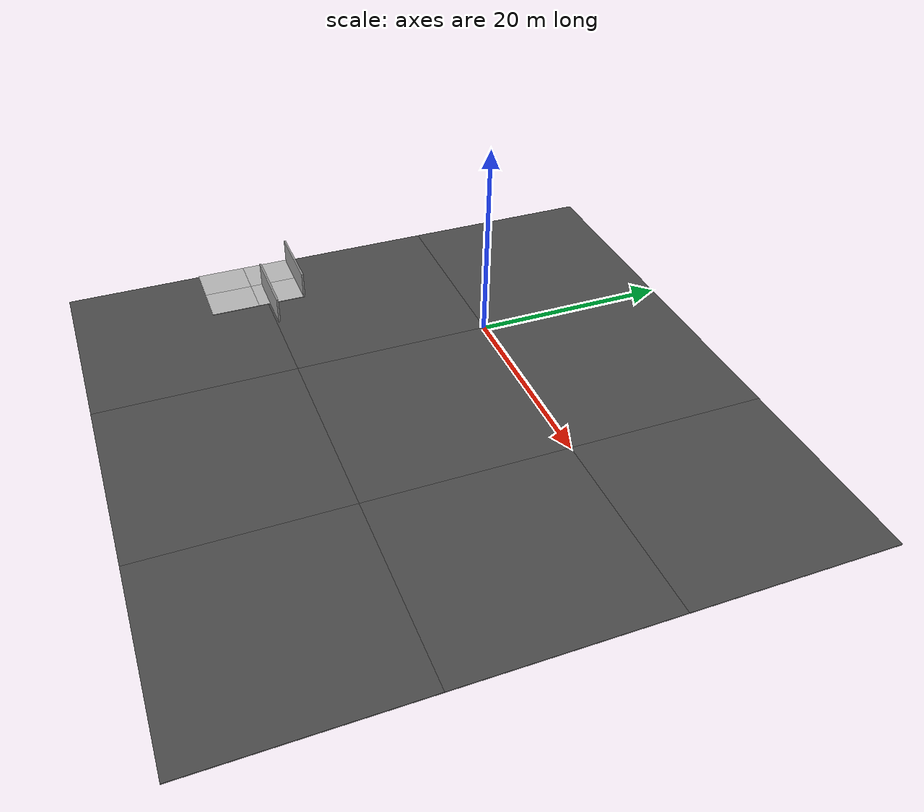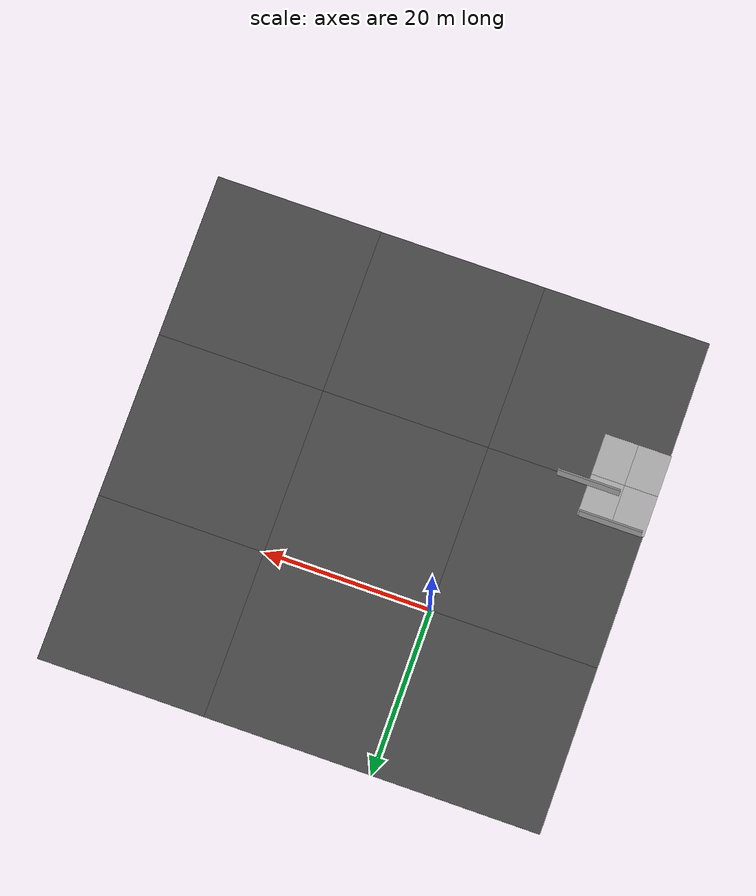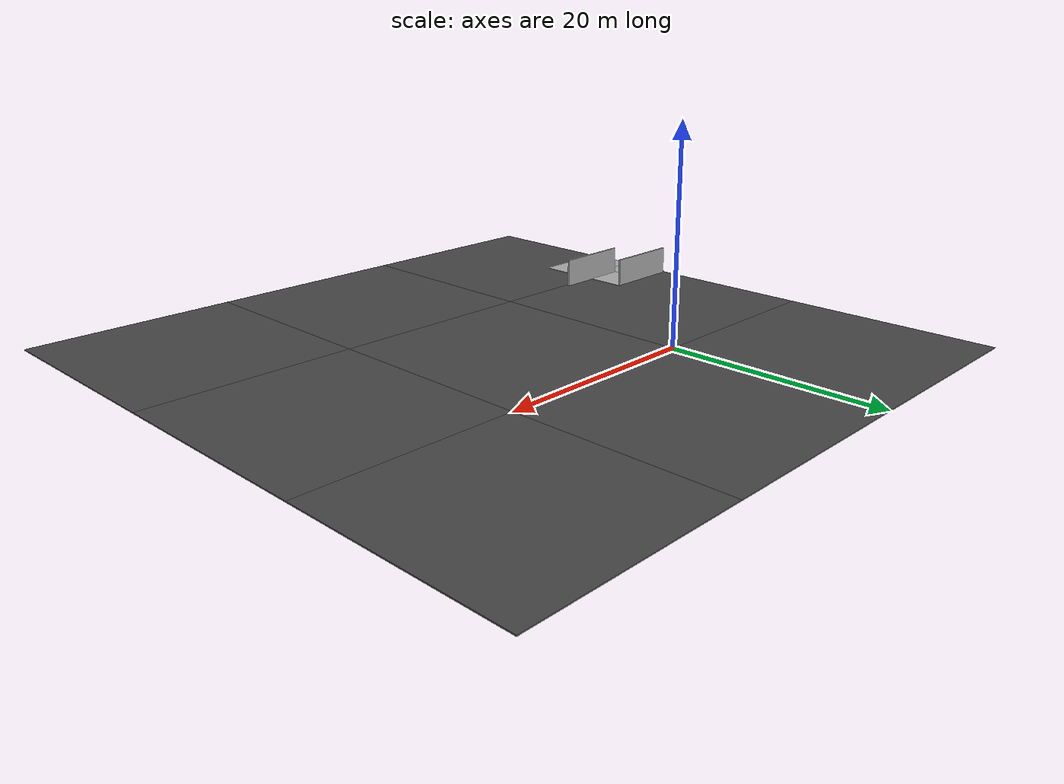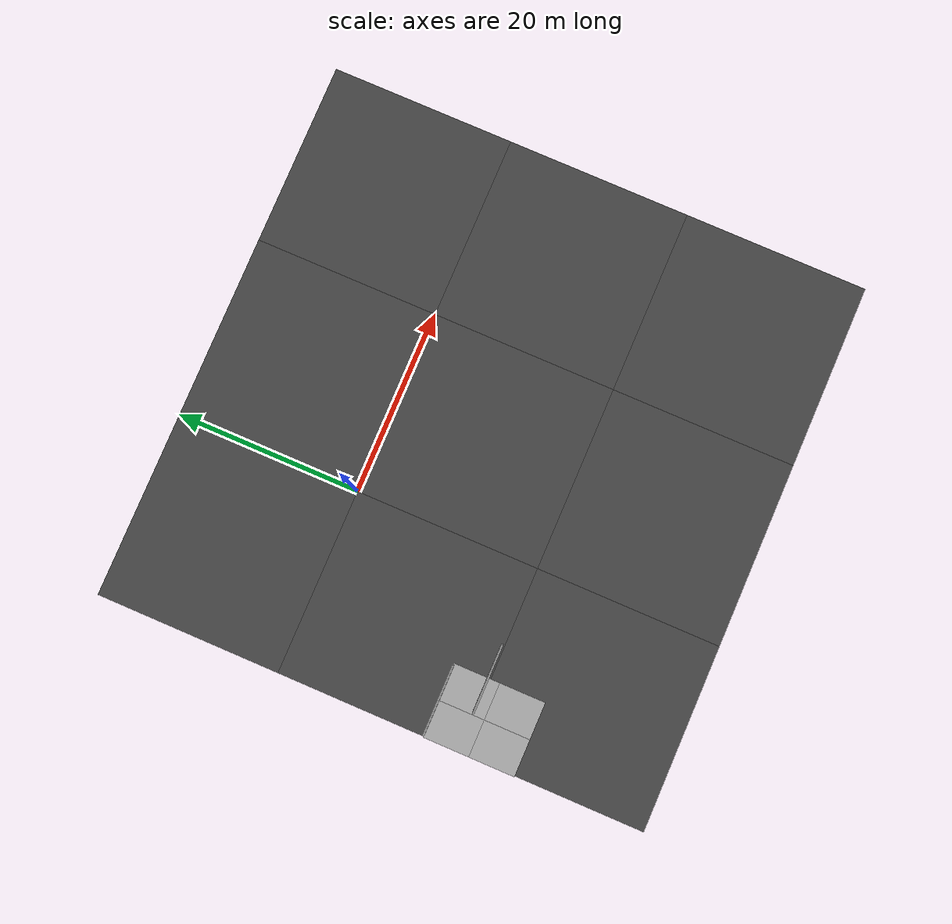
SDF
<sdf version="1.6">
 <world name="default">
  <plugin name="gazebo_octomap" filename="librotors_gazebo_octomap_plugin.so">
   <octomapPubTopic>world/octomap</octomapPubTopic>
   <octomapServiceName>world/get_octomap</octomapServiceName>
  </plugin>
  <light name="sun" type="directional">
   <pose>0 0 10 0 -0 0</pose>
   <diffuse>0.8 0.8 0.8 1</diffuse>
   <specular>0.2 0.2 0.2 1</specular>
   <attenuation>
    <range>1000</range>
    <constant>0.9</constant>
    <linear>0.01</linear>
    <quadratic>0.001</quadratic>
   </attenuation>
   <direction>-0.5 0.1 -0.9</direction>
  </light>
  <plugin name="ros_interface_plugin" filename="librotors_gazebo_ros_interface_plugin.so"/>
  <physics name="default_physics" default="0" type="ode">
   <ode>
    <solver>
     <type>quick</type>
     <iters>1000</iters>
     <sor>1.3</sor>
     <use_dynamic_moi_rescaling>0</use_dynamic_moi_rescaling>
    </solver>
    <constraints>
     <cfm>0</cfm>
     <erp>0.2</erp>
     <contact_max_correcting_vel>100</contact_max_correcting_vel>
     <contact_surface_layer>0.001</contact_surface_layer>
    </constraints>
   </ode>
   <max_step_size>0.01</max_step_size>
   <real_time_factor>1</real_time_factor>
   <real_time_update_rate>100</real_time_update_rate>
  </physics>
  <scene><ambient>0.4 0.4 0.4 1</ambient><background>0.7 0.7 0.7 1</background><shadows>1</shadows></scene>
  <spherical_coordinates>
   <surface_model>EARTH_WGS84</surface_model>
   <latitude_deg>47.3667</latitude_deg>
   <longitude_deg>8.55</longitude_deg>
   <elevation>500</elevation>
   <heading_deg>0</heading_deg>
  </spherical_coordinates>
  <model name="asphalt_plane">
   <static>1</static>
   <link name="link">
    <collision name="collision"><geometry><box><size>20 20 0.1</size></box></geometry></collision>
    <visual name="visual">
     <cast_shadows>0</cast_shadows>
     <geometry><box><size>20 20 0.1</size></box></geometry>
     <material>
      <script>
       <uri>model://asphalt_plane/materials/scripts</uri>
       <uri>model://asphalt_plane/materials/textures</uri>
       <name>vrc/asphalt</name>
      </script>
     </material>
    </visual>
    <velocity_decay><linear>0</linear><angular>0</angular></velocity_decay>
   </link>
   <pose>10 10 0 0 -0 0</pose>
  </model>
  <model name="asphalt_plane_0">
   <static>1</static>
   <link name="link">
    <collision name="collision"><geometry><box><size>20 20 0.1</size></box></geometry></collision>
    <visual name="visual">
     <cast_shadows>0</cast_shadows>
     <geometry><box><size>20 20 0.1</size></box></geometry>
     <material>
      <script>
       <uri>model://asphalt_plane/materials/scripts</uri>
       <uri>model://asphalt_plane/materials/textures</uri>
       <name>vrc/asphalt</name>
      </script>
     </material>
    </visual>
    <velocity_decay><linear>0</linear><angular>0</angular></velocity_decay>
   </link>
   <pose>10 -10 0 0 -0 0</pose>
  </model>
  <model name="asphalt_plane_1">
   <static>1</static>
   <link name="link">
    <collision name="collision"><geometry><box><size>20 20 0.1</size></box></geometry></collision>
    <visual name="visual">
     <cast_shadows>0</cast_shadows>
     <geometry><box><size>20 20 0.1</size></box></geometry>
     <material>
      <script>
       <uri>model://asphalt_plane/materials/scripts</uri>
       <uri>model://asphalt_plane/materials/textures</uri>
       <name>vrc/asphalt</name>
      </script>
     </material>
    </visual>
    <velocity_decay><linear>0</linear><angular>0</angular></velocity_decay>
   </link>
   <pose>-10 10 0 0 -0 0</pose>
  </model>
  <model name="asphalt_plane_2">
   <static>1</static>
   <link name="link">
    <collision name="collision"><geometry><box><size>20 20 0.1</size></box></geometry></collision>
    <visual name="visual">
     <cast_shadows>0</cast_shadows>
     <geometry><box><size>20 20 0.1</size></box></geometry>
     <material>
      <script>
       <uri>model://asphalt_plane/materials/scripts</uri>
       <uri>model://asphalt_plane/materials/textures</uri>
       <name>vrc/asphalt</name>
      </script>
     </material>
    </visual>
    <velocity_decay><linear>0</linear><angular>0</angular></velocity_decay>
   </link>
   <pose>-10 -10 0 0 -0 0</pose>
  </model>
  <model name="asphalt_plane_3">
   <static>1</static>
   <link name="link">
    <collision name="collision"><geometry><box><size>20 20 0.1</size></box></geometry></collision>
    <visual name="visual">
     <cast_shadows>0</cast_shadows>
     <geometry><box><size>20 20 0.1</size></box></geometry>
     <material>
      <script>
       <uri>model://asphalt_plane/materials/scripts</uri>
       <uri>model://asphalt_plane/materials/textures</uri>
       <name>vrc/asphalt</name>
      </script>
     </material>
    </visual>
    <velocity_decay><linear>0</linear><angular>0</angular></velocity_decay>
   </link>
   <pose>-10 -30 0 0 -0 0</pose>
  </model>
  <model name="asphalt_plane_4">
   <static>1</static>
   <link name="link">
    <collision name="collision"><geometry><box><size>20 20 0.1</size></box></geometry></collision>
    <visual name="visual">
     <cast_shadows>0</cast_shadows>
     <geometry><box><size>20 20 0.1</size></box></geometry>
     <material>
      <script>
       <uri>model://asphalt_plane/materials/scripts</uri>
       <uri>model://asphalt_plane/materials/textures</uri>
       <name>vrc/asphalt</name>
      </script>
     </material>
    </visual>
    <velocity_decay><linear>0</linear><angular>0</angular></velocity_decay>
   </link>
   <pose>10 -30 0 0 -0 0</pose>
  </model>
  <model name="asphalt_plane_5">
   <static>1</static>
   <link name="link">
    <collision name="collision"><geometry><box><size>20 20 0.1</size></box></geometry></collision>
    <visual name="visual">
     <cast_shadows>0</cast_shadows>
     <geometry><box><size>20 20 0.1</size></box></geometry>
     <material>
      <script>
       <uri>model://asphalt_plane/materials/scripts</uri>
       <uri>model://asphalt_plane/materials/textures</uri>
       <name>vrc/asphalt</name>
      </script>
     </material>
    </visual>
    <velocity_decay><linear>0</linear><angular>0</angular></velocity_decay>
   </link>
   <pose>30 -30 0 0 -0 0</pose>
  </model>
  <model name="asphalt_plane_6">
   <static>1</static>
   <link name="link">
    <collision name="collision"><geometry><box><size>20 20 0.1</size></box></geometry></collision>
    <visual name="visual">
     <cast_shadows>0</cast_shadows>
     <geometry><box><size>20 20 0.1</size></box></geometry>
     <material>
      <script>
       <uri>model://asphalt_plane/materials/scripts</uri>
       <uri>model://asphalt_plane/materials/textures</uri>
       <name>vrc/asphalt</name>
      </script>
     </material>
    </visual>
    <velocity_decay><linear>0</linear><angular>0</angular></velocity_decay>
   </link>
   <pose>30 10 0 0 -0 0</pose>
  </model>
  <model name="asphalt_plane_7">
   <static>1</static>
   <link name="link">
    <collision name="collision"><geometry><box><size>20 20 0.1</size></box></geometry></collision>
    <visual name="visual">
     <cast_shadows>0</cast_shadows>
     <geometry><box><size>20 20 0.1</size></box></geometry>
     <material>
      <script>
       <uri>model://asphalt_plane/materials/scripts</uri>
       <uri>model://asphalt_plane/materials/textures</uri>
       <name>vrc/asphalt</name>
      </script>
     </material>
    </visual>
    <velocity_decay><linear>0</linear><angular>0</angular></velocity_decay>
   </link>
   <pose>30 -10 0 0 -0 0</pose>
  </model>
  <model name="mud_box">
   <static>1</static>
   <link name="link">
    <collision name="collision"><geometry><box><size>8 10 0.2</size></box></geometry></collision>
    <visual name="visual_1">
     <pose>-2 2.5 0 0 -0 0</pose>
     <cast_shadows>0</cast_shadows>
     <geometry><box><size>4 5 0.2</size></box></geometry>
     <material>
      <script>
       <uri>model://mud_box/materials/scripts</uri>
       <uri>model://mud_box/materials/textures</uri>
       <name>vrc/mud</name>
      </script>
     </material>
    </visual>
    <visual name="visual_2">
     <pose>2 2.5 0 0 -0 0</pose>
     <cast_shadows>0</cast_shadows>
     <geometry><box><size>4 5 0.2</size></box></geometry>
     <material>
      <script>
       <uri>model://mud_box/materials/scripts</uri>
       <uri>model://mud_box/materials/textures</uri>
       <name>vrc/mud</name>
      </script>
     </material>
    </visual>
    <visual name="visual_3">
     <pose>2 -2.5 0 0 -0 0</pose>
     <cast_shadows>0</cast_shadows>
     <geometry><box><size>4 5 0.2</size></box></geometry>
     <material>
      <script>
       <uri>model://mud_box/materials/scripts</uri>
       <uri>model://mud_box/materials/textures</uri>
       <name>vrc/mud</name>
      </script>
     </material>
    </visual>
    <visual name="visual_4">
     <pose>-2 -2.5 0 0 -0 0</pose>
     <cast_shadows>0</cast_shadows>
     <geometry><box><size>4 5 0.2</size></box></geometry>
     <material>
      <script>
       <uri>model://mud_box/materials/scripts</uri>
       <uri>model://mud_box/materials/textures</uri>
       <name>vrc/mud</name>
      </script>
     </material>
    </visual>
    <velocity_decay><linear>0</linear><angular>0</angular></velocity_decay>
   </link>
   <pose>-16.1 -21 0 0 -0 0</pose>
  </model>
  <model name="grey_wall">
   <static>1</static>
   <link name="link">
    <pose>0 0 1.4 0 -0 0</pose>
    <collision name="collision"><geometry><box><size>7.5 0.2 2.8</size></box></geometry></collision>
    <visual name="visual">
     <cast_shadows>0</cast_shadows>
     <geometry><box><size>7.5 0.2 2.8</size></box></geometry>
     <material>
      <script>
       <uri>model://grey_wall/materials/scripts</uri>
       <uri>model://grey_wall/materials/textures</uri>
       <name>vrc/grey_wall</name>
      </script>
     </material>
    </visual>
    <velocity_decay><linear>0</linear><angular>0</angular></velocity_decay>
   </link>
   <pose>-16 -16 0 0 -0 0</pose>
  </model>
  <model name="grey_wall_0">
   <static>1</static>
   <link name="link">
    <pose>0 0 1.4 0 -0 0</pose>
    <collision name="collision"><geometry><box><size>7.5 0.2 2.8</size></box></geometry></collision>
    <visual name="visual">
     <cast_shadows>0</cast_shadows>
     <geometry><box><size>7.5 0.2 2.8</size></box></geometry>
     <material>
      <script>
       <uri>model://grey_wall/materials/scripts</uri>
       <uri>model://grey_wall/materials/textures</uri>
       <name>vrc/grey_wall</name>
      </script>
     </material>
    </visual>
    <velocity_decay><linear>0</linear><angular>0</angular></velocity_decay>
   </link>
   <pose>-12.15 -19.7 0 0 -0 0</pose>
  </model>
  <gravity>0 0 -9.8</gravity>
  <magnetic_field>6e-06 2.3e-05 -4.2e-05</magnetic_field>
  <atmosphere type="adiabatic"/>
 </world>
</sdf>
